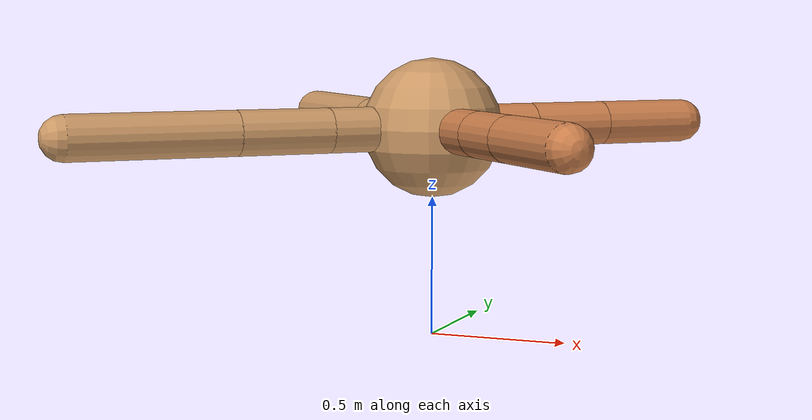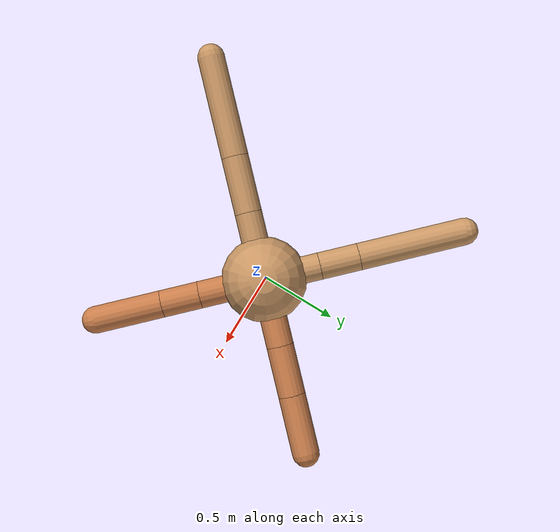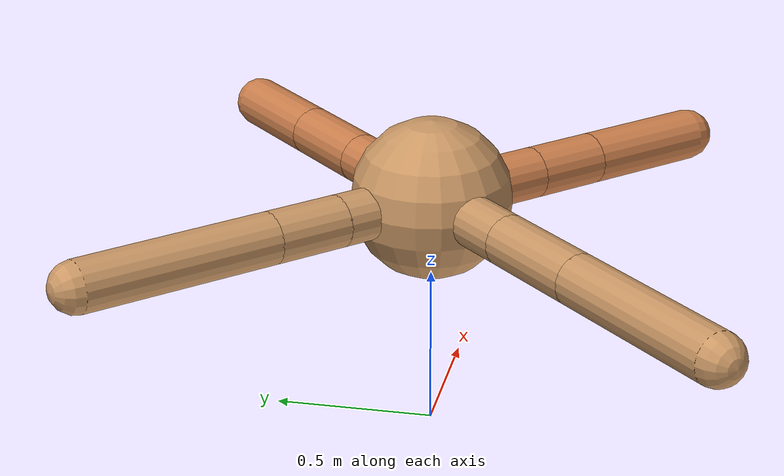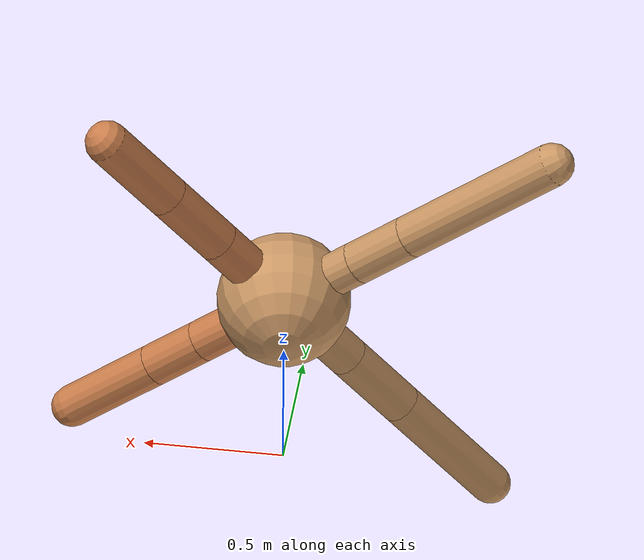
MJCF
<mujoco model="ant">
  <compiler angle="degree" coordinate="local" inertiafromgeom="true" />
  <option integrator="RK4" timestep="0.01" />
  <custom>
    <numeric data="0.0 0.0 0.55 1.0 0.0 0.0 0.0 0.0 1.0 0.0 -1.0 0.0 -1.0 0.0 1.0" name="init_qpos" />
  </custom>
  <default>
    <joint armature="1" damping="1" limited="true" />
    <geom conaffinity="0" condim="3" density="5.0" friction="1.5 0.1 0.1" margin="0.01" rgba="0.8 0.6 0.4 1" />
  </default>
  <worldbody>
    <body name="torso" pos="0 0 0.75">
      <geom name="torso_geom" pos="0 0 0" size="0.25" type="sphere" />

      <body name="front_left_leg" pos="0 0 0">
        <geom fromto="0.0 0.0 0.0 0.2799975035042023 0.2799975035042023 0.0" name="aux_1_geom" size="0.08" type="capsule" rgba=".8 .5 .3 1" />
        <body name="aux_1" pos="0.2799975035042023 0.2799975035042023 0.0">
          <joint axis="0 0 1" name="hip_1" pos="0.0 0.0 0.0" range="-40 40" type="hinge" />
          <geom fromto="0.0 0.0 0.0 0.20809270096987717 0.20809270096987717 0.0" name="left_leg_geom" size="0.08" type="capsule" rgba=".8 .5 .3 1" />
          <body pos="0.20809270096987717 0.20809270096987717 0.0" name="front_left_foot">
            <joint axis="-1 1 0" name="ankle_1" pos="0.0 0.0 0.0" range="30 100" type="hinge" />
            <geom fromto="0.0 0.0 0.0 0.24590893941318814 0.24590893941318814 0.0" name="left_ankle_geom" size="0.08" type="capsule" rgba=".8 .5 .3 1" />
          </body>
        </body>
      </body>
      <body name="front_right_leg" pos="0 0 0">
        <geom fromto="0.0 0.0 0.0 -0.2349849051947548 0.2349849051947548 0.0" name="aux_2_geom" size="0.08" type="capsule" />
        <body name="aux_2" pos="-0.2349849051947548 0.2349849051947548 0.0">
          <joint axis="0 0 1" name="hip_2" pos="0.0 0.0 0.0" range="-40 40" type="hinge" />
          <geom fromto="0.0 0.0 0.0 -0.16509635632708577 0.16509635632708577 0.0" name="right_leg_geom" size="0.08" type="capsule" />
          <body pos="-0.16509635632708577 0.16509635632708577 0.0" name="front_right_foot">
            <joint axis="1 1 0" name="ankle_2" pos="0.0 0.0 0.0" range="-100 -30" type="hinge" />
            <geom fromto="0.0 0.0 0.0 -0.4458468685883949 0.4458468685883949 0.0" name="right_ankle_geom" size="0.08" type="capsule" />
          </body>
        </body>
      </body>
      <body name="left_back_leg" pos="0 0 0">
        <geom fromto="0.0 0.0 0.0 -0.2803713346032067 -0.2803713346032067 0.0" name="aux_3_geom" size="0.08" type="capsule" />
        <body name="aux_3" pos="-0.2803713346032067 -0.2803713346032067 0.0">
          <joint axis="0 0 1" name="hip_3" pos="0.0 0.0 0.0" range="-40 40" type="hinge" />
          <geom fromto="0.0 0.0 0.0 -0.23709288191916597 -0.23709288191916597 0.0" name="back_leg_geom" size="0.08" type="capsule" />
          <body pos="-0.23709288191916597 -0.23709288191916597 0.0" name="left_back_foot">
            <joint axis="-1 1 0" name="ankle_3" pos="0.0 0.0 0.0" range="-100 -30" type="hinge" />
            <geom fromto="0.0 0.0 0.0 -0.42183512544475993 -0.42183512544475993 0.0" name="third_ankle_geom" size="0.08" type="capsule" />
          </body>
        </body>
      </body>
      <body name="right_back_leg" pos="0 0 0">
        <geom fromto="0.0 0.0 0.0 0.27149543582171964 -0.27149543582171964 0.0" name="aux_4_geom" size="0.08" type="capsule" rgba=".8 .5 .3 1" />
        <body name="aux_4" pos="0.27149543582171964 -0.27149543582171964 0.0">
          <joint axis="0 0 1" name="hip_4" pos="0.0 0.0 0.0" range="-40 40" type="hinge" />
          <geom fromto="0.0 0.0 0.0 0.15936140519395187 -0.15936140519395187 0.0" name="rightback_leg_geom" size="0.08" type="capsule" rgba=".8 .5 .3 1" />
          <body pos="0.15936140519395187 -0.15936140519395187 0.0" name="right_back_foot">
            <joint axis="1 1 0" name="ankle_4" pos="0.0 0.0 0.0" range="30 100" type="hinge" />
            <geom fromto="0.0 0.0 0.0 0.28029330632542887 -0.28029330632542887 0.0" name="fourth_ankle_geom" size="0.08" type="capsule" rgba=".8 .5 .3 1" />
          </body>
        </body>
      </body>
    </body>
  </worldbody>
  <actuator>
    <motor ctrllimited="true" ctrlrange="-1.0 1.0" joint="hip_4" gear="150" />
    <motor ctrllimited="true" ctrlrange="-1.0 1.0" joint="ankle_4" gear="150" />
    <motor ctrllimited="true" ctrlrange="-1.0 1.0" joint="hip_1" gear="150" />
    <motor ctrllimited="true" ctrlrange="-1.0 1.0" joint="ankle_1" gear="150" />
    <motor ctrllimited="true" ctrlrange="-1.0 1.0" joint="hip_2" gear="150" />
    <motor ctrllimited="true" ctrlrange="-1.0 1.0" joint="ankle_2" gear="150" />
    <motor ctrllimited="true" ctrlrange="-1.0 1.0" joint="hip_3" gear="150" />
    <motor ctrllimited="true" ctrlrange="-1.0 1.0" joint="ankle_3" gear="150" />
  </actuator>
</mujoco>
